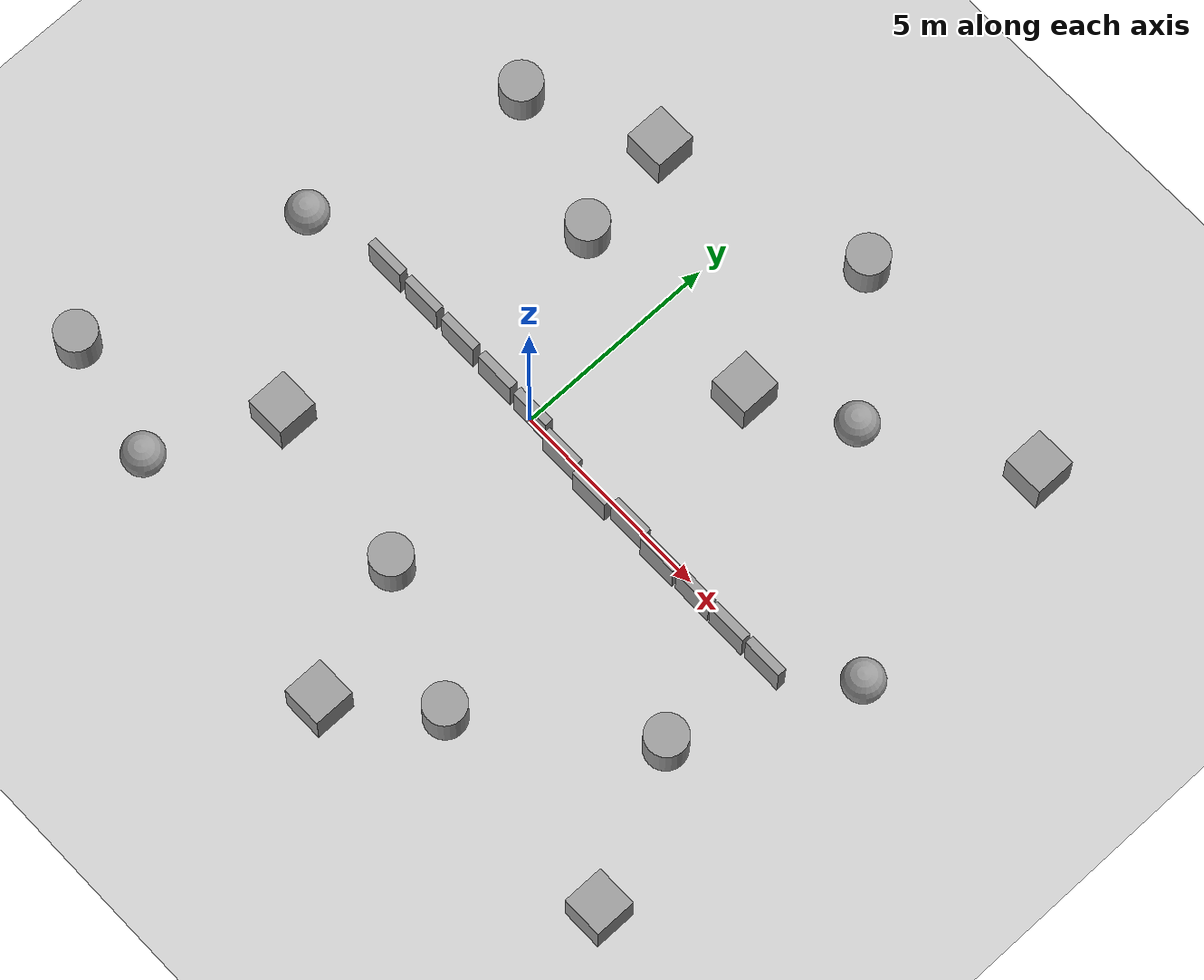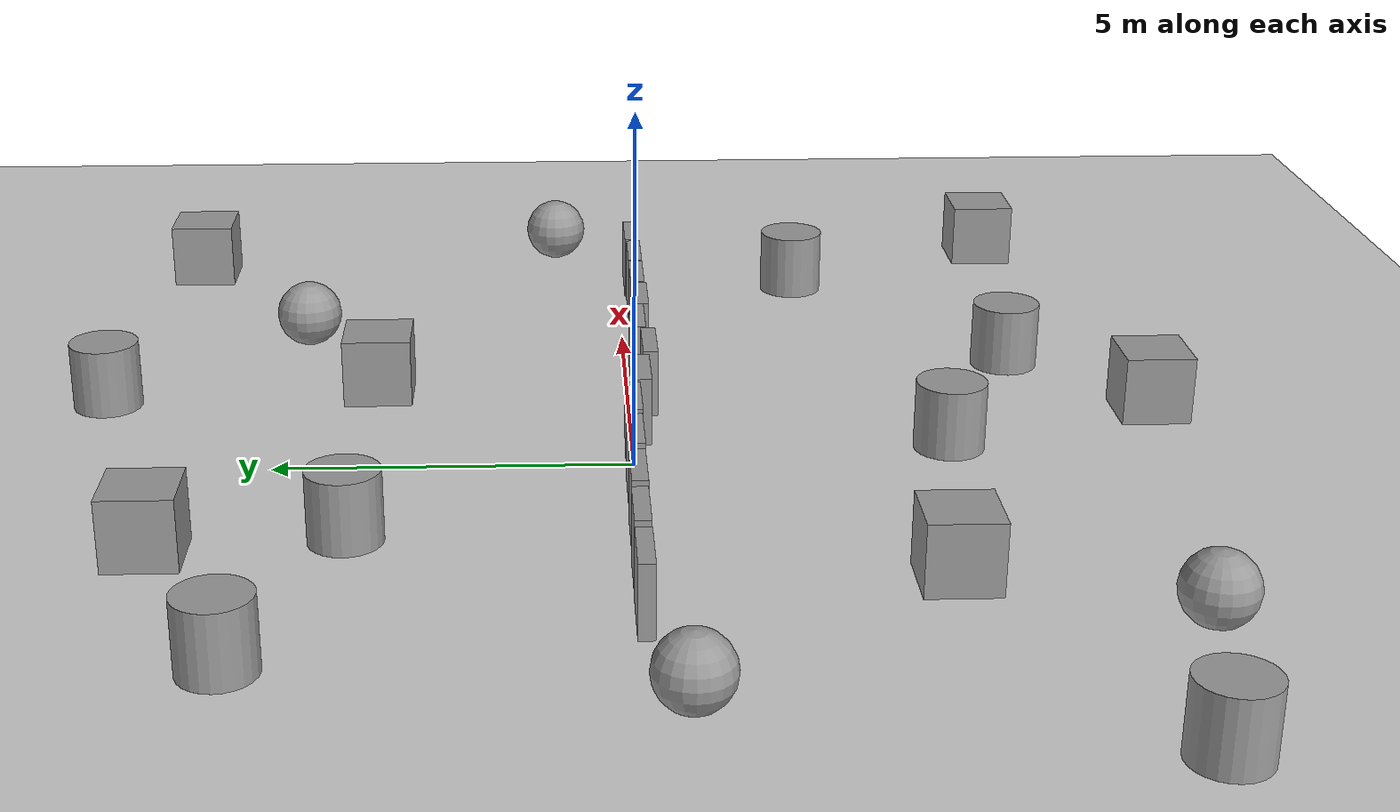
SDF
<sdf version="1.7">
 <world name="simple">
  <plugin name="gazebo_ros_state" filename="libgazebo_ros_state.so"><update_rate>60</update_rate></plugin>
  <light name="sun" type="directional">
   <pose>0 0 10 0 -0 0</pose>
   <diffuse>0.8 0.8 0.8 1</diffuse>
   <specular>0.2 0.2 0.2 1</specular>
   <attenuation>
    <range>1000</range>
    <constant>0.9</constant>
    <linear>0.01</linear>
    <quadratic>0.001</quadratic>
   </attenuation>
   <direction>-0.5 0.1 -0.9</direction>
   <spot><inner_angle>0</inner_angle><outer_angle>0</outer_angle><falloff>0</falloff></spot>
  </light>
  <model name="ground_plane">
   <static>1</static>
   <link name="link">
    <collision name="collision">
     <geometry><plane><normal>0 0 1</normal><size>100 100</size></plane></geometry>
     <surface><friction><ode><mu>100</mu><mu2>50</mu2></ode></friction></surface>
    </collision>
    <visual name="visual">
     <cast_shadows>0</cast_shadows>
     <geometry><plane><normal>0 0 1</normal><size>100 100</size></plane></geometry>
     <material>
      <script><uri>file://media/materials/scripts/gazebo.material</uri><name>Gazebo/Grey</name></script>
     </material>
    </visual>
   </link>
  </model>
  <gravity>0 0 -9.8</gravity>
  <magnetic_field>6e-06 2.3e-05 -4.2e-05</magnetic_field>
  <atmosphere type="adiabatic"/>
  <physics type="ode">
   <max_step_size>0.001</max_step_size>
   <real_time_factor>1</real_time_factor>
   <real_time_update_rate>1000</real_time_update_rate>
  </physics>
  <scene><ambient>0.4 0.4 0.4 1</ambient><background>0.7 0.7 0.7 1</background><shadows>1</shadows></scene>
  <audio><device>default</device></audio>
  <spherical_coordinates>
   <surface_model>EARTH_WGS84</surface_model>
   <latitude_deg>43.5655</latitude_deg>
   <longitude_deg>1.474</longitude_deg>
   <elevation>150</elevation>
   <heading_deg>180</heading_deg>
  </spherical_coordinates>
  <model name="unit_box">
   <static>1</static>
   <pose>2.75599 3.70252 0.499978 0 1e-05 0</pose>
   <link name="link">
    <inertial>
     <mass>1</mass>
     <inertia>
      <ixx>0.166667</ixx>
      <ixy>0</ixy>
      <ixz>0</ixz>
      <iyy>0.166667</iyy>
      <iyz>0</iyz>
      <izz>0.166667</izz>
     </inertia>
    </inertial>
    <collision name="collision"><geometry><box><size>1 1 1</size></box></geometry></collision>
    <visual name="visual">
     <geometry><box><size>1 1 1</size></box></geometry>
     <material>
      <script><name>Gazebo/Grey</name><uri>file://media/materials/scripts/gazebo.material</uri></script>
     </material>
    </visual>
   </link>
  </model>
  <model name="unit_cylinder">
   <static>1</static>
   <pose>0.464252 -4.45268 0.499998 3e-06 -2e-06 0</pose>
   <link name="link">
    <inertial>
     <mass>1</mass>
     <inertia><ixx>0.145833</ixx><ixy>0</ixy><ixz>0</ixz><iyy>0.145833</iyy><iyz>0</iyz><izz>0.125</izz></inertia>
    </inertial>
    <collision name="collision">
     <geometry><cylinder><radius>0.5</radius><length>1</length></cylinder></geometry>
    </collision>
    <visual name="visual">
     <geometry><cylinder><radius>0.5</radius><length>1</length></cylinder></geometry>
     <material>
      <script><name>Gazebo/Grey</name><uri>file://media/materials/scripts/gazebo.material</uri></script>
     </material>
    </visual>
   </link>
  </model>
  <model name="unit_sphere">
   <static>1</static>
   <pose>9.18094 1.04033 0.5 0 -0 0</pose>
   <link name="link">
    <inertial>
     <mass>1</mass>
     <inertia><ixx>0.1</ixx><ixy>0</ixy><ixz>0</ixz><iyy>0.1</iyy><iyz>0</iyz><izz>0.1</izz></inertia>
    </inertial>
    <collision name="collision"><geometry><sphere><radius>0.5</radius></sphere></geometry></collision>
    <visual name="visual">
     <geometry><sphere><radius>0.5</radius></sphere></geometry>
     <material>
      <script><name>Gazebo/Grey</name><uri>file://media/materials/scripts/gazebo.material</uri></script>
     </material>
    </visual>
   </link>
  </model>
  <model name="unit_cylinder_0">
   <static>1</static>
   <pose>-2.26613 3.79733 0.499992 -3e-06 2e-06 0</pose>
   <link name="link">
    <inertial>
     <mass>1</mass>
     <inertia><ixx>0.145833</ixx><ixy>0</ixy><ixz>0</ixz><iyy>0.145833</iyy><iyz>0</iyz><izz>0.125</izz></inertia>
    </inertial>
    <collision name="collision">
     <geometry><cylinder><radius>0.5</radius><length>1</length></cylinder></geometry>
    </collision>
    <visual name="visual">
     <geometry><cylinder><radius>0.5</radius><length>1</length></cylinder></geometry>
     <material>
      <script><name>Gazebo/Grey</name><uri>file://media/materials/scripts/gazebo.material</uri></script>
     </material>
    </visual>
   </link>
  </model>
  <model name="unit_box_0">
   <static>1</static>
   <pose>-3.65119 -3.84662 0.500007 0 1e-05 0</pose>
   <link name="link">
    <inertial>
     <mass>1</mass>
     <inertia>
      <ixx>0.166667</ixx>
      <ixy>0</ixy>
      <ixz>0</ixz>
      <iyy>0.166667</iyy>
      <iyz>0</iyz>
      <izz>0.166667</izz>
     </inertia>
    </inertial>
    <collision name="collision"><geometry><box><size>1 1 1</size></box></geometry></collision>
    <visual name="visual">
     <geometry><box><size>1 1 1</size></box></geometry>
     <material>
      <script><name>Gazebo/Grey</name><uri>file://media/materials/scripts/gazebo.material</uri></script>
     </material>
    </visual>
   </link>
  </model>
  <model name="unit_box_1">
   <static>1</static>
   <pose>1.67146 -7.6069 0.499995 -1e-05 0 0</pose>
   <link name="link">
    <inertial>
     <mass>1</mass>
     <inertia>
      <ixx>0.166667</ixx>
      <ixy>0</ixy>
      <ixz>0</ixz>
      <iyy>0.166667</iyy>
      <iyz>0</iyz>
      <izz>0.166667</izz>
     </inertia>
    </inertial>
    <collision name="collision"><geometry><box><size>1 1 1</size></box></geometry></collision>
    <visual name="visual">
     <geometry><box><size>1 1 1</size></box></geometry>
     <material>
      <script><name>Gazebo/Grey</name><uri>file://media/materials/scripts/gazebo.material</uri></script>
     </material>
    </visual>
   </link>
  </model>
  <model name="unit_cylinder_1">
   <static>1</static>
   <pose>3.66507 -5.84988 0.499993 -3e-06 2e-06 0</pose>
   <link name="link">
    <inertial>
     <mass>1</mass>
     <inertia><ixx>0.145833</ixx><ixy>0</ixy><ixz>0</ixz><iyy>0.145833</iyy><iyz>0</iyz><izz>0.125</izz></inertia>
    </inertial>
    <collision name="collision">
     <geometry><cylinder><radius>0.5</radius><length>1</length></cylinder></geometry>
    </collision>
    <visual name="visual">
     <geometry><cylinder><radius>0.5</radius><length>1</length></cylinder></geometry>
     <material>
      <script><name>Gazebo/Grey</name><uri>file://media/materials/scripts/gazebo.material</uri></script>
     </material>
    </visual>
   </link>
  </model>
  <model name="unit_cylinder_2">
   <static>1</static>
   <pose>7.32569 -2.92137 0.499998 3e-06 -2e-06 0</pose>
   <link name="link">
    <inertial>
     <mass>1</mass>
     <inertia><ixx>0.145833</ixx><ixy>0</ixy><ixz>0</ixz><iyy>0.145833</iyy><iyz>0</iyz><izz>0.125</izz></inertia>
    </inertial>
    <collision name="collision">
     <geometry><cylinder><radius>0.5</radius><length>1</length></cylinder></geometry>
    </collision>
    <visual name="visual">
     <geometry><cylinder><radius>0.5</radius><length>1</length></cylinder></geometry>
     <material>
      <script><name>Gazebo/Grey</name><uri>file://media/materials/scripts/gazebo.material</uri></script>
     </material>
    </visual>
   </link>
  </model>
  <model name="unit_sphere_0">
   <static>1</static>
   <pose>4.95683 4.94724 0.5 0 -0 0</pose>
   <link name="link">
    <inertial>
     <mass>1</mass>
     <inertia><ixx>0.1</ixx><ixy>0</ixy><ixz>0</ixz><iyy>0.1</iyy><iyz>0</iyz><izz>0.1</izz></inertia>
    </inertial>
    <collision name="collision"><geometry><sphere><radius>0.5</radius></sphere></geometry></collision>
    <visual name="visual">
     <geometry><sphere><radius>0.5</radius></sphere></geometry>
     <material>
      <script><name>Gazebo/Grey</name><uri>file://media/materials/scripts/gazebo.material</uri></script>
     </material>
    </visual>
   </link>
  </model>
  <model name="unit_box_2">
   <static>1</static>
   <pose>-2.62797 6.28707 0.499978 -1e-05 0 0</pose>
   <link name="link">
    <inertial>
     <mass>1</mass>
     <inertia>
      <ixx>0.166667</ixx>
      <ixy>0</ixy>
      <ixz>0</ixz>
      <iyy>0.166667</iyy>
      <iyz>0</iyz>
      <izz>0.166667</izz>
     </inertia>
    </inertial>
    <collision name="collision"><geometry><box><size>1 1 1</size></box></geometry></collision>
    <visual name="visual">
     <geometry><box><size>1 1 1</size></box></geometry>
     <material>
      <script><name>Gazebo/Grey</name><uri>file://media/materials/scripts/gazebo.material</uri></script>
     </material>
    </visual>
   </link>
  </model>
  <model name="unit_sphere_1">
   <static>1</static>
   <pose>-6.69205 -0.395527 0.5 0 -0 0</pose>
   <link name="link">
    <inertial>
     <mass>1</mass>
     <inertia><ixx>0.1</ixx><ixy>0</ixy><ixz>0</ixz><iyy>0.1</iyy><iyz>0</iyz><izz>0.1</izz></inertia>
    </inertial>
    <collision name="collision"><geometry><sphere><radius>0.5</radius></sphere></geometry></collision>
    <visual name="visual">
     <geometry><sphere><radius>0.5</radius></sphere></geometry>
     <material>
      <script><name>Gazebo/Grey</name><uri>file://media/materials/scripts/gazebo.material</uri></script>
     </material>
    </visual>
   </link>
  </model>
  <model name="unit_cylinder_3">
   <static>1</static>
   <pose>2.44425 7.68276 0.499987 -3e-06 4e-06 0</pose>
   <link name="link">
    <inertial>
     <mass>1</mass>
     <inertia><ixx>0.145833</ixx><ixy>0</ixy><ixz>0</ixz><iyy>0.145833</iyy><iyz>0</iyz><izz>0.125</izz></inertia>
    </inertial>
    <collision name="collision">
     <geometry><cylinder><radius>0.5</radius><length>1</length></cylinder></geometry>
    </collision>
    <visual name="visual">
     <geometry><cylinder><radius>0.5</radius><length>1</length></cylinder></geometry>
     <material>
      <script><name>Gazebo/Grey</name><uri>file://media/materials/scripts/gazebo.material</uri></script>
     </material>
    </visual>
   </link>
  </model>
  <model name="unit_cylinder_4">
   <static>1</static>
   <pose>-5.64211 4.96613 0.499992 -3e-06 4e-06 0</pose>
   <link name="link">
    <inertial>
     <mass>1</mass>
     <inertia><ixx>0.145833</ixx><ixy>0</ixy><ixz>0</ixz><iyy>0.145833</iyy><iyz>0</iyz><izz>0.125</izz></inertia>
    </inertial>
    <collision name="collision">
     <geometry><cylinder><radius>0.5</radius><length>1</length></cylinder></geometry>
    </collision>
    <visual name="visual">
     <geometry><cylinder><radius>0.5</radius><length>1</length></cylinder></geometry>
     <material>
      <script><name>Gazebo/Grey</name><uri>file://media/materials/scripts/gazebo.material</uri></script>
     </material>
    </visual>
   </link>
  </model>
  <model name="unit_cylinder_5">
   <static>1</static>
   <pose>-7.88105 -5.98962 0.499992 -3e-06 -4e-06 -0</pose>
   <link name="link">
    <inertial>
     <mass>1</mass>
     <inertia><ixx>0.145833</ixx><ixy>0</ixy><ixz>0</ixz><iyy>0.145833</iyy><iyz>0</iyz><izz>0.125</izz></inertia>
    </inertial>
    <collision name="collision">
     <geometry><cylinder><radius>0.5</radius><length>1</length></cylinder></geometry>
    </collision>
    <visual name="visual">
     <geometry><cylinder><radius>0.5</radius><length>1</length></cylinder></geometry>
     <material>
      <script><name>Gazebo/Grey</name><uri>file://media/materials/scripts/gazebo.material</uri></script>
     </material>
    </visual>
   </link>
  </model>
  <model name="unit_sphere_2">
   <static>1</static>
   <pose>-4.94569 -6.70076 0.5 0 -0 0</pose>
   <link name="link">
    <inertial>
     <mass>1</mass>
     <inertia><ixx>0.1</ixx><ixy>0</ixy><ixz>0</ixz><iyy>0.1</iyy><iyz>0</iyz><izz>0.1</izz></inertia>
    </inertial>
    <collision name="collision"><geometry><sphere><radius>0.5</radius></sphere></geometry></collision>
    <visual name="visual">
     <geometry><sphere><radius>0.5</radius></sphere></geometry>
     <material>
      <script><name>Gazebo/Grey</name><uri>file://media/materials/scripts/gazebo.material</uri></script>
     </material>
    </visual>
   </link>
  </model>
  <model name="unit_box_3">
   <static>1</static>
   <pose>8.98883 -6.40605 0.499995 0 1e-05 0</pose>
   <link name="link">
    <inertial>
     <mass>1</mass>
     <inertia>
      <ixx>0.166667</ixx>
      <ixy>0</ixy>
      <ixz>0</ixz>
      <iyy>0.166667</iyy>
      <iyz>0</iyz>
      <izz>0.166667</izz>
     </inertia>
    </inertial>
    <collision name="collision"><geometry><box><size>1 1 1</size></box></geometry></collision>
    <visual name="visual">
     <geometry><box><size>1 1 1</size></box></geometry>
     <material>
      <script><name>Gazebo/Grey</name><uri>file://media/materials/scripts/gazebo.material</uri></script>
     </material>
    </visual>
   </link>
  </model>
  <model name="unit_box_4">
   <static>1</static>
   <pose>8.32297 7.03857 0.499995 -1e-05 0 0</pose>
   <link name="link">
    <inertial>
     <mass>1</mass>
     <inertia>
      <ixx>0.166667</ixx>
      <ixy>0</ixy>
      <ixz>0</ixz>
      <iyy>0.166667</iyy>
      <iyz>0</iyz>
      <izz>0.166667</izz>
     </inertia>
    </inertial>
    <collision name="collision"><geometry><box><size>1 1 1</size></box></geometry></collision>
    <visual name="visual">
     <geometry><box><size>1 1 1</size></box></geometry>
     <material>
      <script><name>Gazebo/Grey</name><uri>file://media/materials/scripts/gazebo.material</uri></script>
     </material>
    </visual>
   </link>
  </model>
  <model name="unit_box_5">
   <pose>0.075926 0.009506 0.5 0 -0 1e-06</pose>
   <link name="link">
    <inertial>
     <mass>1</mass>
     <inertia>
      <ixx>0.166667</ixx>
      <ixy>0</ixy>
      <ixz>0</ixz>
      <iyy>0.166667</iyy>
      <iyz>0</iyz>
      <izz>0.166667</izz>
     </inertia>
    </inertial>
    <collision name="collision"><geometry><box><size>1 0.215565 1</size></box></geometry></collision>
    <visual name="visual">
     <geometry><box><size>1 0.215565 1</size></box></geometry>
     <material>
      <script><name>Gazebo/Grey</name><uri>file://media/materials/scripts/gazebo.material</uri></script>
     </material>
    </visual>
   </link>
  </model>
  <model name="unit_box_5_clone">
   <pose>-1.05699 0.024869 0.5 0 -0 4e-06</pose>
   <link name="link">
    <inertial>
     <mass>1</mass>
     <inertia>
      <ixx>0.166667</ixx>
      <ixy>0</ixy>
      <ixz>0</ixz>
      <iyy>0.166667</iyy>
      <iyz>0</iyz>
      <izz>0.166667</izz>
     </inertia>
    </inertial>
    <collision name="collision"><geometry><box><size>1 0.215565 1</size></box></geometry></collision>
    <visual name="visual">
     <geometry><box><size>1 0.215565 1</size></box></geometry>
     <material>
      <script><name>Gazebo/Grey</name><uri>file://media/materials/scripts/gazebo.material</uri></script>
     </material>
    </visual>
   </link>
  </model>
  <model name="unit_box_5_clone_clone">
   <pose>-2.24535 0.03819 0.5 0 -0 3e-06</pose>
   <link name="link">
    <inertial>
     <mass>1</mass>
     <inertia>
      <ixx>0.166667</ixx>
      <ixy>0</ixy>
      <ixz>0</ixz>
      <iyy>0.166667</iyy>
      <iyz>0</iyz>
      <izz>0.166667</izz>
     </inertia>
    </inertial>
    <collision name="collision"><geometry><box><size>1 0.215565 1</size></box></geometry></collision>
    <visual name="visual">
     <geometry><box><size>1 0.215565 1</size></box></geometry>
     <material>
      <script><name>Gazebo/Grey</name><uri>file://media/materials/scripts/gazebo.material</uri></script>
     </material>
    </visual>
   </link>
  </model>
  <model name="unit_box_5_clone_clone_clone">
   <pose>-3.41552 0.049906 0.5 0 0 -6e-06</pose>
   <link name="link">
    <inertial>
     <mass>1</mass>
     <inertia>
      <ixx>0.166667</ixx>
      <ixy>0</ixy>
      <ixz>0</ixz>
      <iyy>0.166667</iyy>
      <iyz>0</iyz>
      <izz>0.166667</izz>
     </inertia>
    </inertial>
    <collision name="collision"><geometry><box><size>1 0.215565 1</size></box></geometry></collision>
    <visual name="visual">
     <geometry><box><size>1 0.215565 1</size></box></geometry>
     <material>
      <script><name>Gazebo/Grey</name><uri>file://media/materials/scripts/gazebo.material</uri></script>
     </material>
    </visual>
   </link>
  </model>
  <model name="unit_box_5_clone_clone_clone_clone">
   <pose>1.17071 -0.161641 0.5 0 0 -1e-06</pose>
   <link name="link">
    <inertial>
     <mass>1</mass>
     <inertia>
      <ixx>0.166667</ixx>
      <ixy>0</ixy>
      <ixz>0</ixz>
      <iyy>0.166667</iyy>
      <iyz>0</iyz>
      <izz>0.166667</izz>
     </inertia>
    </inertial>
    <collision name="collision"><geometry><box><size>1 0.215565 1</size></box></geometry></collision>
    <visual name="visual">
     <geometry><box><size>1 0.215565 1</size></box></geometry>
     <material>
      <script><name>Gazebo/Grey</name><uri>file://media/materials/scripts/gazebo.material</uri></script>
     </material>
    </visual>
   </link>
  </model>
  <model name="unit_box_5_clone_clone_clone_clone_clone">
   <pose>2.24605 -0.299448 0.5 1e-06 -1e-06 -5e-06</pose>
   <link name="link">
    <inertial>
     <mass>1</mass>
     <inertia>
      <ixx>0.166667</ixx>
      <ixy>0</ixy>
      <ixz>0</ixz>
      <iyy>0.166667</iyy>
      <iyz>0</iyz>
      <izz>0.166667</izz>
     </inertia>
    </inertial>
    <collision name="collision"><geometry><box><size>1 0.215565 1</size></box></geometry></collision>
    <visual name="visual">
     <geometry><box><size>1 0.215565 1</size></box></geometry>
     <material>
      <script><name>Gazebo/Grey</name><uri>file://media/materials/scripts/gazebo.material</uri></script>
     </material>
    </visual>
   </link>
  </model>
  <model name="unit_box_5_clone_clone_clone_clone_clone_clone">
   <pose>3.30898 -0.167851 0.499902 -0 -0 -0.001957</pose>
   <link name="link">
    <inertial>
     <mass>1</mass>
     <inertia>
      <ixx>0.166667</ixx>
      <ixy>0</ixy>
      <ixz>0</ixz>
      <iyy>0.166667</iyy>
      <iyz>0</iyz>
      <izz>0.166667</izz>
     </inertia>
    </inertial>
    <collision name="collision"><geometry><box><size>1 0.215565 1</size></box></geometry></collision>
    <visual name="visual">
     <geometry><box><size>1 0.215565 1</size></box></geometry>
     <material>
      <script><name>Gazebo/Grey</name><uri>file://media/materials/scripts/gazebo.material</uri></script>
     </material>
    </visual>
   </link>
  </model>
  <model name="unit_box_5_clone_clone_clone_clone_clone_clone_clone">
   <pose>4.30882 -0.25586 0.499991 -0 1e-06 -0.001993</pose>
   <link name="link">
    <inertial>
     <mass>1</mass>
     <inertia>
      <ixx>0.166667</ixx>
      <ixy>0</ixy>
      <ixz>0</ixz>
      <iyy>0.166667</iyy>
      <iyz>0</iyz>
      <izz>0.166667</izz>
     </inertia>
    </inertial>
    <collision name="collision"><geometry><box><size>1 0.215565 1</size></box></geometry></collision>
    <visual name="visual">
     <geometry><box><size>1 0.215565 1</size></box></geometry>
     <material>
      <script><name>Gazebo/Grey</name><uri>file://media/materials/scripts/gazebo.material</uri></script>
     </material>
    </visual>
   </link>
  </model>
  <model name="unit_box_5_clone_clone_clone_clone_0">
   <pose>-4.58003 0.054369 0.5 0 0 -7e-06</pose>
   <link name="link">
    <inertial>
     <mass>1</mass>
     <inertia>
      <ixx>0.166667</ixx>
      <ixy>0</ixy>
      <ixz>0</ixz>
      <iyy>0.166667</iyy>
      <iyz>0</iyz>
      <izz>0.166667</izz>
     </inertia>
    </inertial>
    <collision name="collision"><geometry><box><size>1 0.215565 1</size></box></geometry></collision>
    <visual name="visual">
     <geometry><box><size>1 0.215565 1</size></box></geometry>
     <material>
      <script><name>Gazebo/Grey</name><uri>file://media/materials/scripts/gazebo.material</uri></script>
     </material>
    </visual>
   </link>
  </model>
  <model name="unit_box_5_clone_clone_clone_clone_clone_clone_clone_clone">
   <pose>5.37845 -0.231872 0.5 1e-06 1e-06 -0.001982</pose>
   <link name="link">
    <inertial>
     <mass>1</mass>
     <inertia>
      <ixx>0.166667</ixx>
      <ixy>0</ixy>
      <ixz>0</ixz>
      <iyy>0.166667</iyy>
      <iyz>0</iyz>
      <izz>0.166667</izz>
     </inertia>
    </inertial>
    <collision name="collision"><geometry><box><size>1 0.215565 1</size></box></geometry></collision>
    <visual name="visual">
     <geometry><box><size>1 0.215565 1</size></box></geometry>
     <material>
      <script><name>Gazebo/Grey</name><uri>file://media/materials/scripts/gazebo.material</uri></script>
     </material>
    </visual>
   </link>
  </model>
  <model name="unit_box_5_clone_clone_clone_clone_clone_clone_clone_clone_clone">
   <pose>6.42004 -0.235292 0.499997 -1e-06 -6e-06 -0.001985</pose>
   <link name="link">
    <inertial>
     <mass>1</mass>
     <inertia>
      <ixx>0.166667</ixx>
      <ixy>0</ixy>
      <ixz>0</ixz>
      <iyy>0.166667</iyy>
      <iyz>0</iyz>
      <izz>0.166667</izz>
     </inertia>
    </inertial>
    <collision name="collision"><geometry><box><size>1 0.215565 1</size></box></geometry></collision>
    <visual name="visual">
     <geometry><box><size>1 0.215565 1</size></box></geometry>
     <material>
      <script><name>Gazebo/Grey</name><uri>file://media/materials/scripts/gazebo.material</uri></script>
     </material>
    </visual>
   </link>
  </model>
  <model name="unit_box_5_clone_clone_clone_clone_clone_clone_clone_clone_clone_clone">
   <pose>7.48849 -0.215396 0.5 0 -0 -0.001982</pose>
   <link name="link">
    <inertial>
     <mass>1</mass>
     <inertia>
      <ixx>0.166667</ixx>
      <ixy>0</ixy>
      <ixz>0</ixz>
      <iyy>0.166667</iyy>
      <iyz>0</iyz>
      <izz>0.166667</izz>
     </inertia>
    </inertial>
    <collision name="collision"><geometry><box><size>1 0.215565 1</size></box></geometry></collision>
    <visual name="visual">
     <geometry><box><size>1 0.215565 1</size></box></geometry>
     <material>
      <script><name>Gazebo/Grey</name><uri>file://media/materials/scripts/gazebo.material</uri></script>
     </material>
    </visual>
   </link>
  </model>
 </world>
</sdf>
